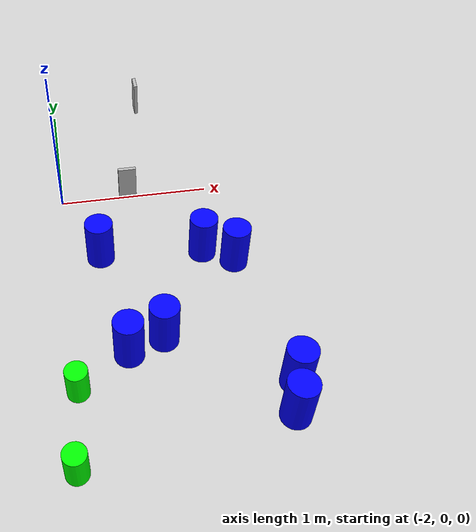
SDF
<sdf version="1.7">
 <world name="default">
  <model name="traffic_tunnel">
   <pose>-1.54401 0.006774 0.125002 3e-06 -2.9e-05 0.000121</pose>
   <link name="box">
    <collision name="collision"><geometry><box><size>0.12 0.025 0.25</size></box></geometry></collision>
    <visual name="visual">
     <geometry><box><size>0.12 0.025 0.25</size></box></geometry>
     <material>
      <script>
       <uri>model://traffic_tunnel/materials/scripts</uri>
       <uri>model://traffic_tunnel/materials/textures</uri>
       <name>traffic_tunnel</name>
      </script>
     </material>
    </visual>
    <inertial>
     <inertia><ixx>1</ixx><ixy>0</ixy><ixz>0</ixz><iyy>1</iyy><iyz>0</iyz><izz>1</izz></inertia>
     <mass>1</mass>
    </inertial>
   </link>
  </model>
  <model name="traffic_stop">
   <static>1</static>
   <link name="box">
    <collision name="collision"><geometry><box><size>0.12 0.025 0.25</size></box></geometry></collision>
    <visual name="visual">
     <geometry><box><size>0.12 0.025 0.25</size></box></geometry>
     <material>
      <script>
       <uri>model://traffic_stop/materials/scripts</uri>
       <uri>model://traffic_stop/materials/textures</uri>
       <name>traffic_stop</name>
      </script>
     </material>
    </visual>
   </link>
   <pose>-1.35 1.04 0.125 0 0 -1.57</pose>
  </model>
  <model name="bouteille">
   <link name="link">
    <inertial>
     <mass>1</mass>
     <inertia><ixx>0.145833</ixx><ixy>0</ixy><ixz>0</ixz><iyy>0.145833</iyy><iyz>0</iyz><izz>0.125</izz></inertia>
    </inertial>
    <visual name="visual">
     <geometry><cylinder><radius>0.087</radius><length>0.31</length></cylinder></geometry>
     <material>
      <script><name>Gazebo/Grey</name><uri>file://media/materials/scripts/gazebo.material</uri></script>
      <shader type="pixel"><normal_map>__default__</normal_map></shader>
      <ambient>0 0 1 1</ambient>
      <diffuse>0 0 1 1</diffuse>
      <specular>0 0 0.9 1</specular>
      <emissive>0 0 0 1</emissive>
     </material>
    </visual>
    <collision name="collision">
     <geometry><cylinder><radius>0.087</radius><length>0.31</length></cylinder></geometry>
     <surface>
      <friction>
       <ode><mu>1</mu><mu2>1</mu2><fdir1>0 0 0</fdir1><slip1>0</slip1><slip2>0</slip2></ode>
       <torsional>
        <coefficient>1</coefficient>
        <patch_radius>0</patch_radius>
        <surface_radius>0</surface_radius>
        <use_patch_radius>1</use_patch_radius>
        <ode><slip>0</slip></ode>
       </torsional>
      </friction>
      <bounce><restitution_coefficient>0</restitution_coefficient><threshold>1e+06</threshold></bounce>
      <contact>
       <collide_without_contact>0</collide_without_contact>
       <collide_without_contact_bitmask>1</collide_without_contact_bitmask>
       <collide_bitmask>1</collide_bitmask>
       <ode>
        <soft_cfm>0</soft_cfm>
        <soft_erp>0.2</soft_erp>
        <kp>1e+13</kp>
        <kd>1</kd>
        <max_vel>0.01</max_vel>
        <min_depth>0</min_depth>
       </ode>
       <bullet>
        <split_impulse>1</split_impulse>
        <split_impulse_penetration_threshold>-0.01</split_impulse_penetration_threshold>
        <soft_cfm>0</soft_cfm>
        <soft_erp>0.2</soft_erp>
        <kp>1e+13</kp>
        <kd>1</kd>
       </bullet>
      </contact>
     </surface>
    </collision>
   </link>
   <static>0</static>
   <pose>-1.78817 -0.551286 0.155 0 -0 0</pose>
  </model>
  <model name="bouteille_clone">
   <link name="link">
    <inertial>
     <mass>1</mass>
     <inertia><ixx>0.145833</ixx><ixy>0</ixy><ixz>0</ixz><iyy>0.145833</iyy><iyz>0</iyz><izz>0.125</izz></inertia>
    </inertial>
    <visual name="visual">
     <geometry><cylinder><radius>0.087</radius><length>0.31</length></cylinder></geometry>
     <material>
      <script><name>Gazebo/Grey</name><uri>file://media/materials/scripts/gazebo.material</uri></script>
      <shader type="pixel"><normal_map>__default__</normal_map></shader>
      <ambient>0 0 1 1</ambient>
      <diffuse>0 0 1 1</diffuse>
      <specular>0 0 0.9 1</specular>
      <emissive>0 0 0 1</emissive>
     </material>
    </visual>
    <collision name="collision">
     <geometry><cylinder><radius>0.087</radius><length>0.31</length></cylinder></geometry>
     <surface>
      <friction>
       <ode><mu>1</mu><mu2>1</mu2><fdir1>0 0 0</fdir1><slip1>0</slip1><slip2>0</slip2></ode>
       <torsional>
        <coefficient>1</coefficient>
        <patch_radius>0</patch_radius>
        <surface_radius>0</surface_radius>
        <use_patch_radius>1</use_patch_radius>
        <ode><slip>0</slip></ode>
       </torsional>
      </friction>
      <bounce><restitution_coefficient>0</restitution_coefficient><threshold>1e+06</threshold></bounce>
      <contact>
       <collide_without_contact>0</collide_without_contact>
       <collide_without_contact_bitmask>1</collide_without_contact_bitmask>
       <collide_bitmask>1</collide_bitmask>
       <ode>
        <soft_cfm>0</soft_cfm>
        <soft_erp>0.2</soft_erp>
        <kp>1e+13</kp>
        <kd>1</kd>
        <max_vel>0.01</max_vel>
        <min_depth>0</min_depth>
       </ode>
       <bullet>
        <split_impulse>1</split_impulse>
        <split_impulse_penetration_threshold>-0.01</split_impulse_penetration_threshold>
        <soft_cfm>0</soft_cfm>
        <soft_erp>0.2</soft_erp>
        <kp>1e+13</kp>
        <kd>1</kd>
       </bullet>
      </contact>
     </surface>
    </collision>
   </link>
   <static>0</static>
   <pose>-1.14132 -0.605782 0.15499 0 -0 0</pose>
  </model>
  <model name="bouteille_clone_clone_clone">
   <link name="link">
    <inertial>
     <mass>1</mass>
     <inertia><ixx>0.145833</ixx><ixy>0</ixy><ixz>0</ixz><iyy>0.145833</iyy><iyz>0</iyz><izz>0.125</izz></inertia>
    </inertial>
    <visual name="visual">
     <geometry><cylinder><radius>0.087</radius><length>0.31</length></cylinder></geometry>
     <material>
      <script><name>Gazebo/Grey</name><uri>file://media/materials/scripts/gazebo.material</uri></script>
      <shader type="pixel"><normal_map>__default__</normal_map></shader>
      <ambient>0 0 1 1</ambient>
      <diffuse>0 0 1 1</diffuse>
      <specular>0 0 0.9 1</specular>
      <emissive>0 0 0 1</emissive>
     </material>
    </visual>
    <collision name="collision">
     <geometry><cylinder><radius>0.087</radius><length>0.31</length></cylinder></geometry>
     <surface>
      <friction>
       <ode><mu>1</mu><mu2>1</mu2><fdir1>0 0 0</fdir1><slip1>0</slip1><slip2>0</slip2></ode>
       <torsional>
        <coefficient>1</coefficient>
        <patch_radius>0</patch_radius>
        <surface_radius>0</surface_radius>
        <use_patch_radius>1</use_patch_radius>
        <ode><slip>0</slip></ode>
       </torsional>
      </friction>
      <bounce><restitution_coefficient>0</restitution_coefficient><threshold>1e+06</threshold></bounce>
      <contact>
       <collide_without_contact>0</collide_without_contact>
       <collide_without_contact_bitmask>1</collide_without_contact_bitmask>
       <collide_bitmask>1</collide_bitmask>
       <ode>
        <soft_cfm>0</soft_cfm>
        <soft_erp>0.2</soft_erp>
        <kp>1e+13</kp>
        <kd>1</kd>
        <max_vel>0.01</max_vel>
        <min_depth>0</min_depth>
       </ode>
       <bullet>
        <split_impulse>1</split_impulse>
        <split_impulse_penetration_threshold>-0.01</split_impulse_penetration_threshold>
        <soft_cfm>0</soft_cfm>
        <soft_erp>0.2</soft_erp>
        <kp>1e+13</kp>
        <kd>1</kd>
       </bullet>
      </contact>
     </surface>
    </collision>
   </link>
   <static>0</static>
   <pose>-0.959461 -0.718726 0.154991 0 -0 0</pose>
  </model>
  <model name="bouteille_clone_clone_clone_1">
   <link name="link">
    <inertial>
     <mass>1</mass>
     <inertia><ixx>0.145833</ixx><ixy>0</ixy><ixz>0</ixz><iyy>0.145833</iyy><iyz>0</iyz><izz>0.125</izz></inertia>
    </inertial>
    <visual name="visual">
     <geometry><cylinder><radius>0.087</radius><length>0.31</length></cylinder></geometry>
     <material>
      <script><name>Gazebo/Grey</name><uri>file://media/materials/scripts/gazebo.material</uri></script>
      <shader type="pixel"><normal_map>__default__</normal_map></shader>
      <ambient>0 0 1 1</ambient>
      <diffuse>0 0 1 1</diffuse>
      <specular>0 0 0.9 1</specular>
      <emissive>0 0 0 1</emissive>
     </material>
    </visual>
    <collision name="collision">
     <geometry><cylinder><radius>0.087</radius><length>0.31</length></cylinder></geometry>
     <surface>
      <friction>
       <ode><mu>1</mu><mu2>1</mu2><fdir1>0 0 0</fdir1><slip1>0</slip1><slip2>0</slip2></ode>
       <torsional>
        <coefficient>1</coefficient>
        <patch_radius>0</patch_radius>
        <surface_radius>0</surface_radius>
        <use_patch_radius>1</use_patch_radius>
        <ode><slip>0</slip></ode>
       </torsional>
      </friction>
      <bounce><restitution_coefficient>0</restitution_coefficient><threshold>1e+06</threshold></bounce>
      <contact>
       <collide_without_contact>0</collide_without_contact>
       <collide_without_contact_bitmask>1</collide_without_contact_bitmask>
       <collide_bitmask>1</collide_bitmask>
       <ode>
        <soft_cfm>0</soft_cfm>
        <soft_erp>0.2</soft_erp>
        <kp>1e+13</kp>
        <kd>1</kd>
        <max_vel>0.01</max_vel>
        <min_depth>0</min_depth>
       </ode>
       <bullet>
        <split_impulse>1</split_impulse>
        <split_impulse_penetration_threshold>-0.01</split_impulse_penetration_threshold>
        <soft_cfm>0</soft_cfm>
        <soft_erp>0.2</soft_erp>
        <kp>1e+13</kp>
        <kd>1</kd>
       </bullet>
      </contact>
     </surface>
    </collision>
   </link>
   <static>0</static>
   <pose>-1.49566 -1.24558 0.15499 0 -0 0</pose>
  </model>
  <model name="bouteille_clone_clone_clone_2">
   <link name="link">
    <inertial>
     <mass>1</mass>
     <inertia><ixx>0.145833</ixx><ixy>0</ixy><ixz>0</ixz><iyy>0.145833</iyy><iyz>0</iyz><izz>0.125</izz></inertia>
    </inertial>
    <visual name="visual">
     <geometry><cylinder><radius>0.087</radius><length>0.31</length></cylinder></geometry>
     <material>
      <script><name>Gazebo/Grey</name><uri>file://media/materials/scripts/gazebo.material</uri></script>
      <shader type="pixel"><normal_map>__default__</normal_map></shader>
      <ambient>0 0 1 1</ambient>
      <diffuse>0 0 1 1</diffuse>
      <specular>0 0 0.9 1</specular>
      <emissive>0 0 0 1</emissive>
     </material>
    </visual>
    <collision name="collision">
     <geometry><cylinder><radius>0.087</radius><length>0.31</length></cylinder></geometry>
     <surface>
      <friction>
       <ode><mu>1</mu><mu2>1</mu2><fdir1>0 0 0</fdir1><slip1>0</slip1><slip2>0</slip2></ode>
       <torsional>
        <coefficient>1</coefficient>
        <patch_radius>0</patch_radius>
        <surface_radius>0</surface_radius>
        <use_patch_radius>1</use_patch_radius>
        <ode><slip>0</slip></ode>
       </torsional>
      </friction>
      <bounce><restitution_coefficient>0</restitution_coefficient><threshold>1e+06</threshold></bounce>
      <contact>
       <collide_without_contact>0</collide_without_contact>
       <collide_without_contact_bitmask>1</collide_without_contact_bitmask>
       <collide_bitmask>1</collide_bitmask>
       <ode>
        <soft_cfm>0</soft_cfm>
        <soft_erp>0.2</soft_erp>
        <kp>1e+13</kp>
        <kd>1</kd>
        <max_vel>0.01</max_vel>
        <min_depth>0</min_depth>
       </ode>
       <bullet>
        <split_impulse>1</split_impulse>
        <split_impulse_penetration_threshold>-0.01</split_impulse_penetration_threshold>
        <soft_cfm>0</soft_cfm>
        <soft_erp>0.2</soft_erp>
        <kp>1e+13</kp>
        <kd>1</kd>
       </bullet>
      </contact>
     </surface>
    </collision>
   </link>
   <static>0</static>
   <pose>-0.836901 -1.6381 0.15499 0 -0 0</pose>
  </model>
  <model name="bouteille_clone_clone_clone_3">
   <link name="link">
    <inertial>
     <mass>1</mass>
     <inertia><ixx>0.145833</ixx><ixy>0</ixy><ixz>0</ixz><iyy>0.145833</iyy><iyz>0</iyz><izz>0.125</izz></inertia>
    </inertial>
    <visual name="visual">
     <geometry><cylinder><radius>0.087</radius><length>0.31</length></cylinder></geometry>
     <material>
      <script><name>Gazebo/Grey</name><uri>file://media/materials/scripts/gazebo.material</uri></script>
      <shader type="pixel"><normal_map>__default__</normal_map></shader>
      <ambient>0 0 1 1</ambient>
      <diffuse>0 0 1 1</diffuse>
      <specular>0 0 0.9 1</specular>
      <emissive>0 0 0 1</emissive>
     </material>
    </visual>
    <collision name="collision">
     <geometry><cylinder><radius>0.087</radius><length>0.31</length></cylinder></geometry>
     <surface>
      <friction>
       <ode><mu>1</mu><mu2>1</mu2><fdir1>0 0 0</fdir1><slip1>0</slip1><slip2>0</slip2></ode>
       <torsional>
        <coefficient>1</coefficient>
        <patch_radius>0</patch_radius>
        <surface_radius>0</surface_radius>
        <use_patch_radius>1</use_patch_radius>
        <ode><slip>0</slip></ode>
       </torsional>
      </friction>
      <bounce><restitution_coefficient>0</restitution_coefficient><threshold>1e+06</threshold></bounce>
      <contact>
       <collide_without_contact>0</collide_without_contact>
       <collide_without_contact_bitmask>1</collide_without_contact_bitmask>
       <collide_bitmask>1</collide_bitmask>
       <ode>
        <soft_cfm>0</soft_cfm>
        <soft_erp>0.2</soft_erp>
        <kp>1e+13</kp>
        <kd>1</kd>
        <max_vel>0.01</max_vel>
        <min_depth>0</min_depth>
       </ode>
       <bullet>
        <split_impulse>1</split_impulse>
        <split_impulse_penetration_threshold>-0.01</split_impulse_penetration_threshold>
        <soft_cfm>0</soft_cfm>
        <soft_erp>0.2</soft_erp>
        <kp>1e+13</kp>
        <kd>1</kd>
       </bullet>
      </contact>
     </surface>
    </collision>
   </link>
   <static>0</static>
   <pose>-1.70559 -1.31929 0.155 0 -0 0</pose>
  </model>
  <model name="bouteille_clone_clone_clone_clone">
   <link name="link">
    <inertial>
     <mass>1</mass>
     <inertia><ixx>0.145833</ixx><ixy>0</ixy><ixz>0</ixz><iyy>0.145833</iyy><iyz>0</iyz><izz>0.125</izz></inertia>
    </inertial>
    <visual name="visual">
     <geometry><cylinder><radius>0.087</radius><length>0.31</length></cylinder></geometry>
     <material>
      <script><name>Gazebo/Grey</name><uri>file://media/materials/scripts/gazebo.material</uri></script>
      <shader type="pixel"><normal_map>__default__</normal_map></shader>
      <ambient>0 0 1 1</ambient>
      <diffuse>0 0 1 1</diffuse>
      <specular>0 0 0.9 1</specular>
      <emissive>0 0 0 1</emissive>
     </material>
    </visual>
    <collision name="collision">
     <geometry><cylinder><radius>0.087</radius><length>0.31</length></cylinder></geometry>
     <surface>
      <friction>
       <ode><mu>1</mu><mu2>1</mu2><fdir1>0 0 0</fdir1><slip1>0</slip1><slip2>0</slip2></ode>
       <torsional>
        <coefficient>1</coefficient>
        <patch_radius>0</patch_radius>
        <surface_radius>0</surface_radius>
        <use_patch_radius>1</use_patch_radius>
        <ode><slip>0</slip></ode>
       </torsional>
      </friction>
      <bounce><restitution_coefficient>0</restitution_coefficient><threshold>1e+06</threshold></bounce>
      <contact>
       <collide_without_contact>0</collide_without_contact>
       <collide_without_contact_bitmask>1</collide_without_contact_bitmask>
       <collide_bitmask>1</collide_bitmask>
       <ode>
        <soft_cfm>0</soft_cfm>
        <soft_erp>0.2</soft_erp>
        <kp>1e+13</kp>
        <kd>1</kd>
        <max_vel>0.01</max_vel>
        <min_depth>0</min_depth>
       </ode>
       <bullet>
        <split_impulse>1</split_impulse>
        <split_impulse_penetration_threshold>-0.01</split_impulse_penetration_threshold>
        <soft_cfm>0</soft_cfm>
        <soft_erp>0.2</soft_erp>
        <kp>1e+13</kp>
        <kd>1</kd>
       </bullet>
      </contact>
     </surface>
    </collision>
   </link>
   <static>0</static>
   <pose>-0.894183 -1.83235 0.155 0 -0 2e-06</pose>
  </model>
  <model name="petite_bouteille">
   <link name="link_0">
    <inertial>
     <mass>1</mass>
     <inertia><ixx>0.145833</ixx><ixy>0</ixy><ixz>0</ixz><iyy>0.145833</iyy><iyz>0</iyz><izz>0.125</izz></inertia>
    </inertial>
    <visual name="visual">
     <geometry><cylinder><radius>0.064</radius><length>0.209</length></cylinder></geometry>
     <material>
      <lighting>1</lighting>
      <script><uri>file://media/materials/scripts/gazebo.material</uri><name>Gazebo/Grey</name></script>
      <shader type="pixel"><normal_map>__default__</normal_map></shader>
      <ambient>0 1 0 1</ambient>
      <diffuse>0 1 0 1</diffuse>
      <specular>0 1 0 1</specular>
      <emissive>0 0.5 0 1</emissive>
     </material>
    </visual>
    <collision name="collision">
     <geometry><cylinder><radius>0.064</radius><length>0.209</length></cylinder></geometry>
     <surface>
      <friction>
       <ode><mu>1</mu><mu2>1</mu2><fdir1>0 0 0</fdir1><slip1>0</slip1><slip2>0</slip2></ode>
       <torsional>
        <coefficient>1</coefficient>
        <patch_radius>0</patch_radius>
        <surface_radius>0</surface_radius>
        <use_patch_radius>1</use_patch_radius>
        <ode><slip>0</slip></ode>
       </torsional>
      </friction>
      <bounce><restitution_coefficient>0</restitution_coefficient><threshold>1e+06</threshold></bounce>
      <contact>
       <collide_without_contact>0</collide_without_contact>
       <collide_without_contact_bitmask>1</collide_without_contact_bitmask>
       <collide_bitmask>1</collide_bitmask>
       <ode>
        <soft_cfm>0</soft_cfm>
        <soft_erp>0.2</soft_erp>
        <kp>1e+13</kp>
        <kd>1</kd>
        <max_vel>0.01</max_vel>
        <min_depth>0</min_depth>
       </ode>
       <bullet>
        <split_impulse>1</split_impulse>
        <split_impulse_penetration_threshold>-0.01</split_impulse_penetration_threshold>
        <soft_cfm>0</soft_cfm>
        <soft_erp>0.2</soft_erp>
        <kp>1e+13</kp>
        <kd>1</kd>
       </bullet>
      </contact>
     </surface>
    </collision>
   </link>
   <static>0</static>
   <pose>-2.04889 -1.97166 0.1045 0 0 -1.6e-05</pose>
  </model>
  <model name="petite_bouteille_clone">
   <link name="link_0">
    <inertial>
     <mass>1</mass>
     <inertia><ixx>0.145833</ixx><ixy>0</ixy><ixz>0</ixz><iyy>0.145833</iyy><iyz>0</iyz><izz>0.125</izz></inertia>
    </inertial>
    <visual name="visual">
     <geometry><cylinder><radius>0.064</radius><length>0.209</length></cylinder></geometry>
     <material>
      <lighting>1</lighting>
      <script><uri>file://media/materials/scripts/gazebo.material</uri><name>Gazebo/Grey</name></script>
      <shader type="pixel"><normal_map>__default__</normal_map></shader>
      <ambient>0 1 0 1</ambient>
      <diffuse>0 1 0 1</diffuse>
      <specular>0 1 0 1</specular>
      <emissive>0 0.5 0 1</emissive>
     </material>
    </visual>
    <collision name="collision">
     <geometry><cylinder><radius>0.064</radius><length>0.209</length></cylinder></geometry>
     <surface>
      <friction>
       <ode><mu>1</mu><mu2>1</mu2><fdir1>0 0 0</fdir1><slip1>0</slip1><slip2>0</slip2></ode>
       <torsional>
        <coefficient>1</coefficient>
        <patch_radius>0</patch_radius>
        <surface_radius>0</surface_radius>
        <use_patch_radius>1</use_patch_radius>
        <ode><slip>0</slip></ode>
       </torsional>
      </friction>
      <bounce><restitution_coefficient>0</restitution_coefficient><threshold>1e+06</threshold></bounce>
      <contact>
       <collide_without_contact>0</collide_without_contact>
       <collide_without_contact_bitmask>1</collide_without_contact_bitmask>
       <collide_bitmask>1</collide_bitmask>
       <ode>
        <soft_cfm>0</soft_cfm>
        <soft_erp>0.2</soft_erp>
        <kp>1e+13</kp>
        <kd>1</kd>
        <max_vel>0.01</max_vel>
        <min_depth>0</min_depth>
       </ode>
       <bullet>
        <split_impulse>1</split_impulse>
        <split_impulse_penetration_threshold>-0.01</split_impulse_penetration_threshold>
        <soft_cfm>0</soft_cfm>
        <soft_erp>0.2</soft_erp>
        <kp>1e+13</kp>
        <kd>1</kd>
       </bullet>
      </contact>
     </surface>
    </collision>
   </link>
   <static>0</static>
   <pose>-2.00755 -1.51469 0.1045 0 0 -1.7e-05</pose>
  </model>
 </world>
</sdf>
